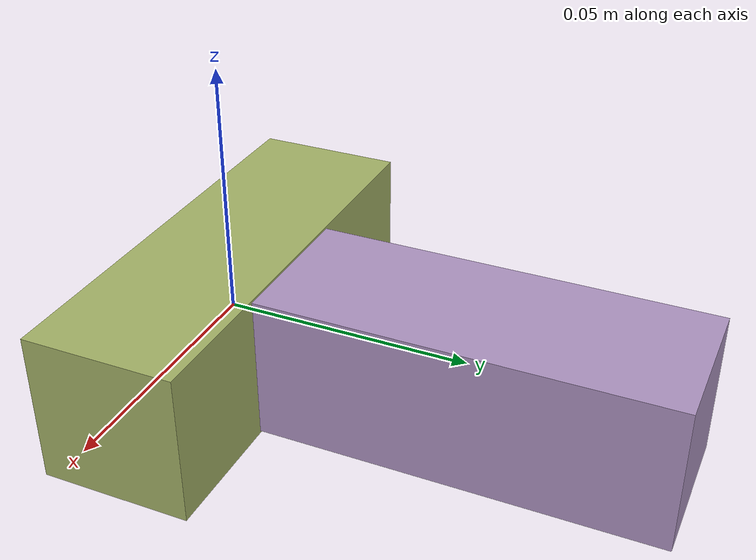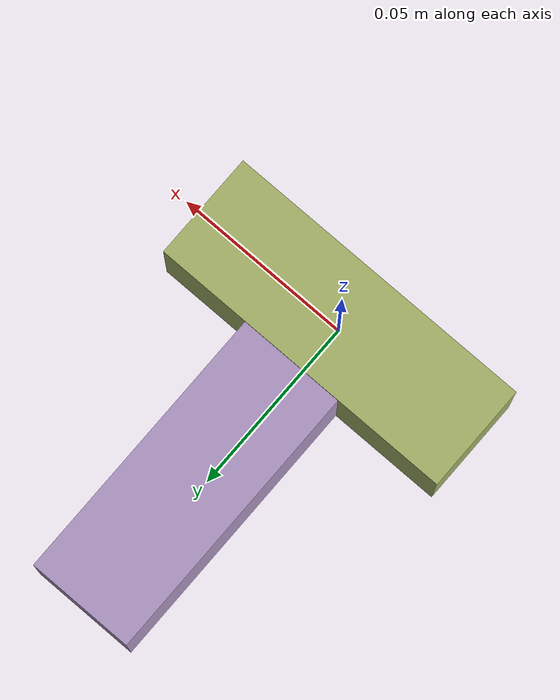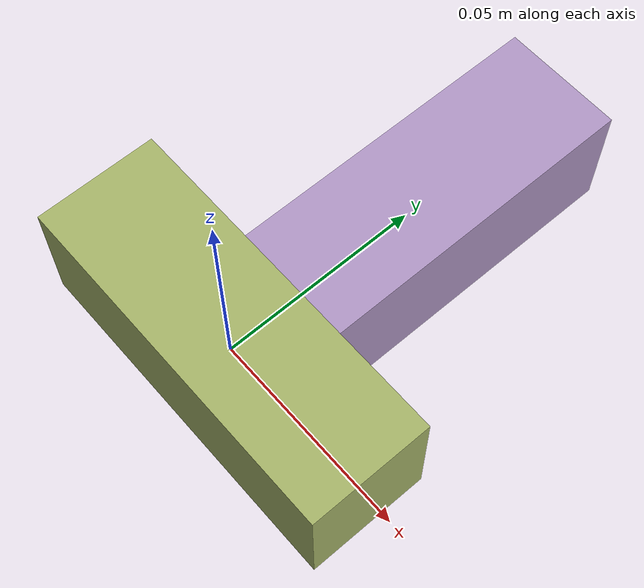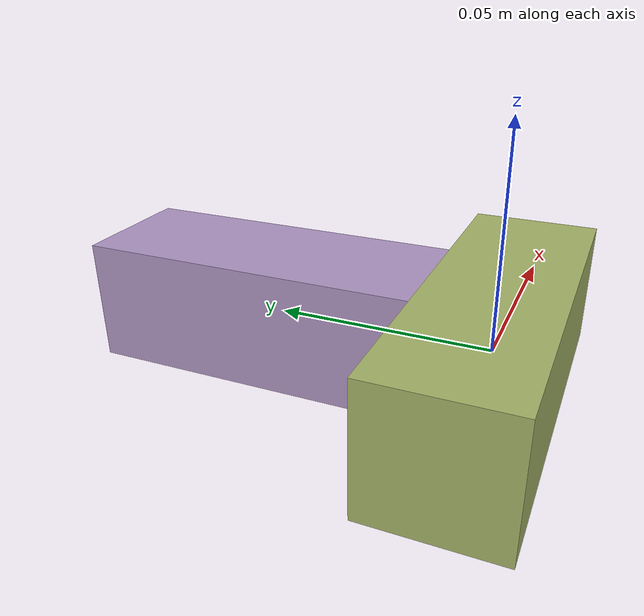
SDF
<sdf version="1.4"><world name="default"><model name="object0"><link name="link1"><pose>0 0 0 0 0 0</pose><inertial><pose>0 0 0 0 0 0</pose><mass>0.04768352933903886</mass><inertia><ixx>7.152529400855829e-06</ixx><ixy>0</ixy><iyy>3.4560188233106085e-05</iyy><ixz>0</ixz><iyz>0</iyz><izz>3.4560188233106085e-05</izz></inertia></inertial><visual name="link1_visual"><pose>0 0  0 0 0 0</pose><geometry><box><size>0.08830283210933124 0.03 0.03</size></box></geometry><material><diffuse>0.643956922354892 0.6990568226742202 0.40597287383271613 1</diffuse></material></visual><collision><pose>0 0  0 0 0 0</pose><geometry><box><size>0.08830283210933124 0.03 0.03</size></box></geometry></collision></link><link name="link2"><pose>0.002579033536727407 0.05186847114479351 0 0 0 0</pose><inertial><pose>0 0 0 0 0 0</pose><mass>0.04543459185049951</mass><inertia><ixx>2.9987684164015554e-05</ixx><ixy>0</ixy><iyy>6.59180203430997e-06</iyy><ixz>0</ixz><iyz>0</iyz><izz>3.0211070907280508e-05</izz></inertia></inertial><visual name="link2_visual"><pose>0 0  0 0 0 0</pose><geometry><box><size>0.03 0.08413813305648057 0.028999999999999998</size></box></geometry><material><diffuse>0.6805415423609247 0.5802574508816906 0.7576748950060607 1</diffuse></material></visual><collision><pose>0 0  0 0 0 0</pose><geometry><box><size>0.03 0.08413813305648057 0.028999999999999998</size></box></geometry></collision></link><joint name="link_joint_0" type="fixed"><parent>link1</parent><child>link2</child><pose>0 0 0 0 0 0</pose><axis><xyz>0 0 1</xyz></axis></joint></model></world></sdf>
